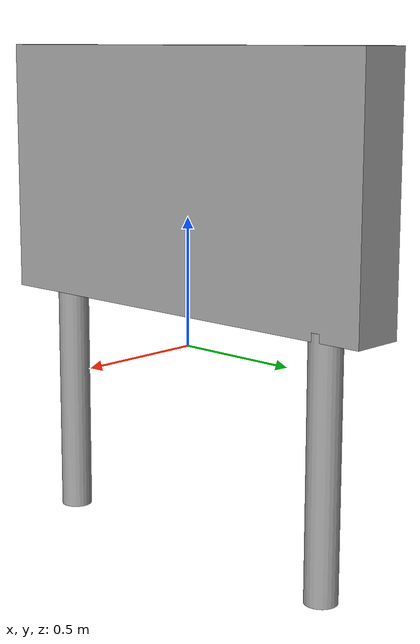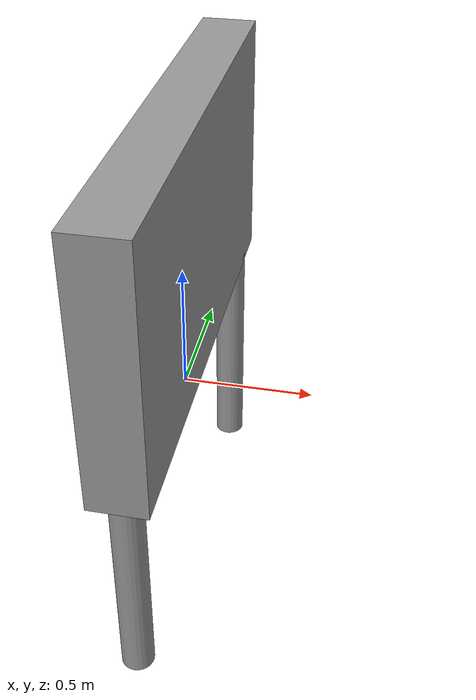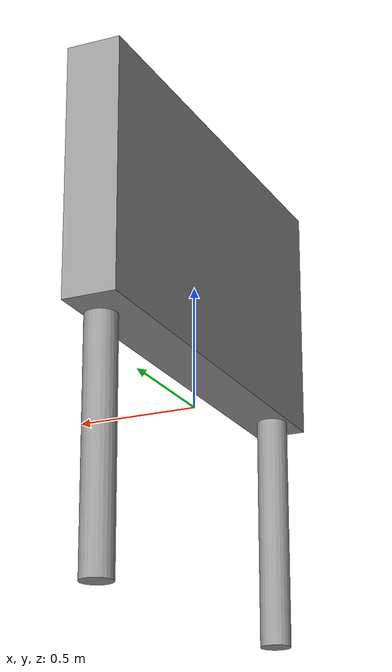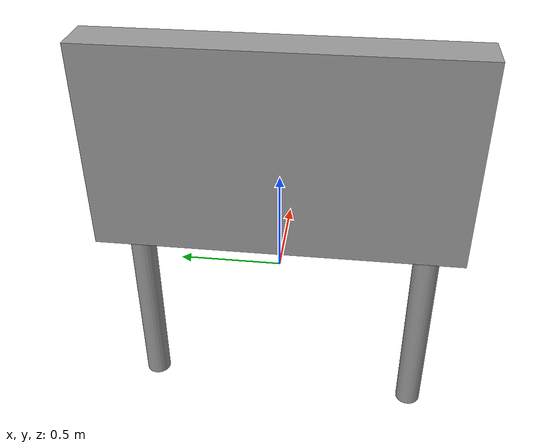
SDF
<?xml version='1.0'?>
<sdf version='1.6'>
  <model name='board'>
    <link name='link_0'>
      <pose frame=''>0.040766 0.707475 -0.325727 0 -0 0</pose>
      <inertial>
        <mass>0.0159457</mass>
        <inertia>
          <ixx>0.0013447</ixx>
          <ixy>0</ixy>
          <ixz>0</ixz>
          <iyy>0.0013447</iyy>
          <iyz>0</iyz>
          <izz>3.17832e-05</izz>
        </inertia>
        <pose frame=''>0 0 0 0 -0 0</pose>
      </inertial>
      <visual name='visual'>
        <pose frame=''>0 0 0 0 -0 0</pose>
        <geometry>
          <cylinder>
            <radius>0.0631355</radius>
            <length>1</length>
          </cylinder>
        </geometry>
        <material>
          <lighting>1</lighting>
          <script>
            <uri>file://media/materials/scripts/gazebo.material</uri>
            <name>Gazebo/Grey</name>
          </script>
          <ambient>0.3 0.3 0.3 1</ambient>
          <diffuse>0.7 0.7 0.7 1</diffuse>
          <specular>0.01 0.01 0.01 1</specular>
          <emissive>0 0 0 1</emissive>
        </material>
        <cast_shadows>1</cast_shadows>
        <transparency>0</transparency>
      </visual>
      <collision name='collision'>
        <laser_retro>0</laser_retro>
        <max_contacts>10</max_contacts>
        <pose frame=''>0 0 0 0 -0 0</pose>
        <geometry>
          <cylinder>
            <radius>0.063136</radius>
            <length>1</length>
          </cylinder>
        </geometry>
        <surface>
          <friction>
            <ode>
              <mu>1</mu>
              <mu2>1</mu2>
              <fdir1>0 0 0</fdir1>
              <slip1>0</slip1>
              <slip2>0</slip2>
            </ode>
            <torsional>
              <coefficient>1</coefficient>
              <patch_radius>0</patch_radius>
              <surface_radius>0</surface_radius>
              <use_patch_radius>1</use_patch_radius>
              <ode>
                <slip>0</slip>
              </ode>
            </torsional>
          </friction>
          <bounce>
            <restitution_coefficient>0</restitution_coefficient>
            <threshold>1e+06</threshold>
          </bounce>
          <contact>
            <collide_without_contact>0</collide_without_contact>
            <collide_without_contact_bitmask>1</collide_without_contact_bitmask>
            <collide_bitmask>1</collide_bitmask>
            <ode>
              <soft_cfm>0</soft_cfm>
              <soft_erp>0.2</soft_erp>
              <kp>1e+13</kp>
              <kd>1</kd>
              <max_vel>0.01</max_vel>
              <min_depth>0</min_depth>
            </ode>
            <bullet>
              <split_impulse>1</split_impulse>
              <split_impulse_penetration_threshold>-0.01</split_impulse_penetration_threshold>
              <soft_cfm>0</soft_cfm>
              <soft_erp>0.2</soft_erp>
              <kp>1e+13</kp>
              <kd>1</kd>
            </bullet>
          </contact>
        </surface>
      </collision>
    </link>
    <link name='link_0_clone'>
      <pose frame=''>-0.035251 -0.710699 -0.316066 0 -0 0</pose>
      <inertial>
        <mass>0.0159457</mass>
        <inertia>
          <ixx>0.0013447</ixx>
          <ixy>0</ixy>
          <ixz>0</ixz>
          <iyy>0.0013447</iyy>
          <iyz>0</iyz>
          <izz>3.17832e-05</izz>
        </inertia>
        <pose frame=''>0 0 0 0 -0 0</pose>
      </inertial>
      <visual name='visual'>
        <pose frame=''>0 0 0 0 -0 0</pose>
        <geometry>
          <cylinder>
            <radius>0.0631355</radius>
            <length>1</length>
          </cylinder>
        </geometry>
        <material>
          <lighting>1</lighting>
          <script>
            <uri>file://media/materials/scripts/gazebo.material</uri>
            <name>Gazebo/Grey</name>
          </script>
          <ambient>0.3 0.3 0.3 1</ambient>
          <diffuse>0.7 0.7 0.7 1</diffuse>
          <specular>0.01 0.01 0.01 1</specular>
          <emissive>0 0 0 1</emissive>
          <shader type='pixel'/>
        </material>
        <cast_shadows>1</cast_shadows>
        <transparency>0</transparency>
      </visual>
      <collision name='collision'>
        <laser_retro>0</laser_retro>
        <max_contacts>10</max_contacts>
        <pose frame=''>0 0 0 0 -0 0</pose>
        <geometry>
          <cylinder>
            <radius>0.063135</radius>
            <length>1</length>
          </cylinder>
        </geometry>
        <surface>
          <friction>
            <ode>
              <mu>1</mu>
              <mu2>1</mu2>
              <fdir1>0 0 0</fdir1>
              <slip1>0</slip1>
              <slip2>0</slip2>
            </ode>
            <torsional>
              <coefficient>1</coefficient>
              <patch_radius>0</patch_radius>
              <surface_radius>0</surface_radius>
              <use_patch_radius>1</use_patch_radius>
              <ode>
                <slip>0</slip>
              </ode>
            </torsional>
          </friction>
          <bounce>
            <restitution_coefficient>0</restitution_coefficient>
            <threshold>1e+06</threshold>
          </bounce>
          <contact>
            <collide_without_contact>0</collide_without_contact>
            <collide_without_contact_bitmask>1</collide_without_contact_bitmask>
            <collide_bitmask>1</collide_bitmask>
            <ode>
              <soft_cfm>0</soft_cfm>
              <soft_erp>0.2</soft_erp>
              <kp>1e+13</kp>
              <kd>1</kd>
              <max_vel>0.01</max_vel>
              <min_depth>0</min_depth>
            </ode>
            <bullet>
              <split_impulse>1</split_impulse>
              <split_impulse_penetration_threshold>-0.01</split_impulse_penetration_threshold>
              <soft_cfm>0</soft_cfm>
              <soft_erp>0.2</soft_erp>
              <kp>1e+13</kp>
              <kd>1</kd>
            </bullet>
          </contact>
        </surface>
      </collision>
    </link>
    <link name='link_1'>
      <pose frame=''>-0.005518 0.00348 0.64179 0 -0 0</pose>
      <inertial>
        <mass>0.380215</mass>
        <inertia>
          <ixx>0.132284</ixx>
          <ixy>0</ixy>
          <ixz>0</ixz>
          <iyy>0.0331273</iyy>
          <iyz>0</iyz>
          <izz>0.102042</izz>
        </inertia>
        <pose frame=''>0 0 0 0 -0 0</pose>
      </inertial>
      <visual name='visual'>
        <pose frame=''>0 0 0 0 -0 0</pose>
        <geometry>
          <box>
            <size>0.213391 1.78186 1</size>
          </box>
        </geometry>
        <material>
          <lighting>1</lighting>
          <script>
            <uri>file://media/materials/scripts/gazebo.material</uri>
            <name>Gazebo/Grey</name>
          </script>
          <ambient>0.3 0.3 0.3 1</ambient>
          <diffuse>0.7 0.7 0.7 1</diffuse>
          <specular>0.01 0.01 0.01 1</specular>
          <emissive>0 0 0 1</emissive>
        </material>
        <cast_shadows>1</cast_shadows>
        <transparency>0</transparency>
      </visual>
      <collision name='collision'>
        <laser_retro>0</laser_retro>
        <max_contacts>10</max_contacts>
        <pose frame=''>0 0 0 0 -0 0</pose>
        <geometry>
          <box>
            <size>0.213391 1.78186 1</size>
          </box>
        </geometry>
        <surface>
          <friction>
            <ode>
              <mu>1</mu>
              <mu2>1</mu2>
              <fdir1>0 0 0</fdir1>
              <slip1>0</slip1>
              <slip2>0</slip2>
            </ode>
            <torsional>
              <coefficient>1</coefficient>
              <patch_radius>0</patch_radius>
              <surface_radius>0</surface_radius>
              <use_patch_radius>1</use_patch_radius>
              <ode>
                <slip>0</slip>
              </ode>
            </torsional>
          </friction>
          <bounce>
            <restitution_coefficient>0</restitution_coefficient>
            <threshold>1e+06</threshold>
          </bounce>
          <contact>
            <collide_without_contact>0</collide_without_contact>
            <collide_without_contact_bitmask>1</collide_without_contact_bitmask>
            <collide_bitmask>1</collide_bitmask>
            <ode>
              <soft_cfm>0</soft_cfm>
              <soft_erp>0.2</soft_erp>
              <kp>1e+13</kp>
              <kd>1</kd>
              <max_vel>0.01</max_vel>
              <min_depth>0</min_depth>
            </ode>
            <bullet>
              <split_impulse>1</split_impulse>
              <split_impulse_penetration_threshold>-0.01</split_impulse_penetration_threshold>
              <soft_cfm>0</soft_cfm>
              <soft_erp>0.2</soft_erp>
              <kp>1e+13</kp>
              <kd>1</kd>
            </bullet>
          </contact>
        </surface>
      </collision>
    </link>
    <joint name='link_1_JOINT_0' type='fixed'>
      <parent>link_1</parent>
      <child>link_0</child>
      <pose frame=''>0 0 0 0 -0 0</pose>
      <physics>
        <ode>
          <limit>
            <cfm>0</cfm>
            <erp>0.2</erp>
          </limit>
          <suspension>
            <cfm>0</cfm>
            <erp>0.2</erp>
          </suspension>
        </ode>
      </physics>
    </joint>
    <joint name='link_1_JOINT_1' type='fixed'>
      <parent>link_1</parent>
      <child>link_0_clone</child>
      <pose frame=''>0 0 0 0 -0 0</pose>
      <physics>
        <ode>
          <limit>
            <cfm>0</cfm>
            <erp>0.2</erp>
          </limit>
          <suspension>
            <cfm>0</cfm>
            <erp>0.2</erp>
          </suspension>
        </ode>
      </physics>
    </joint>
    <static>0</static>
    <allow_auto_disable>1</allow_auto_disable>
  </model>
</sdf>
